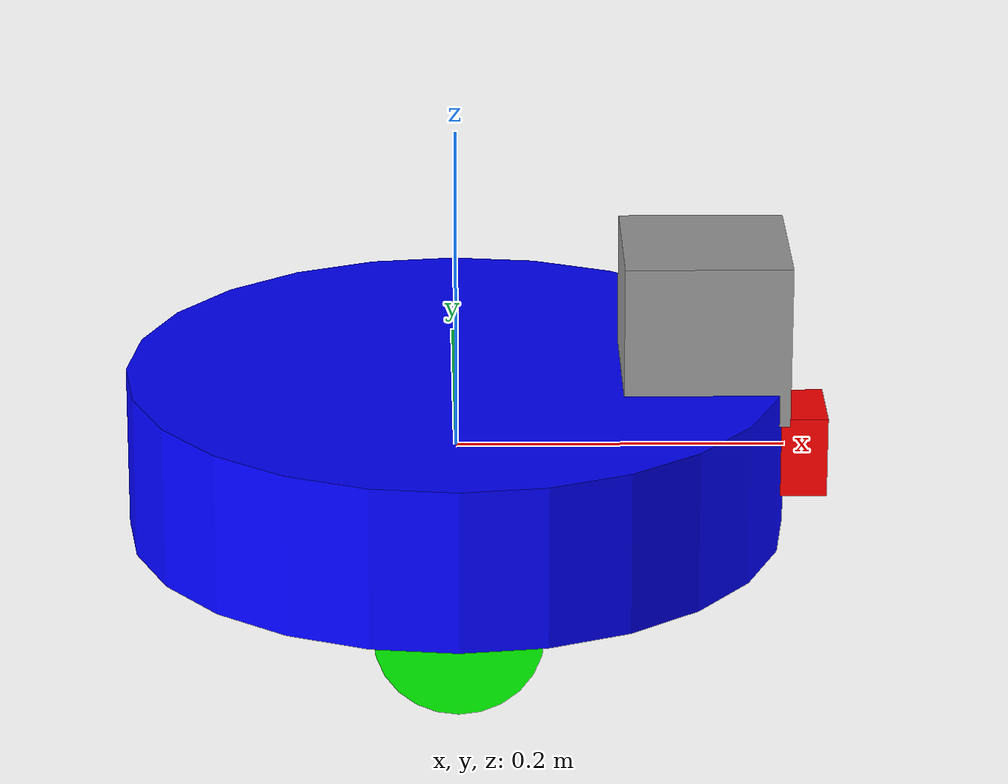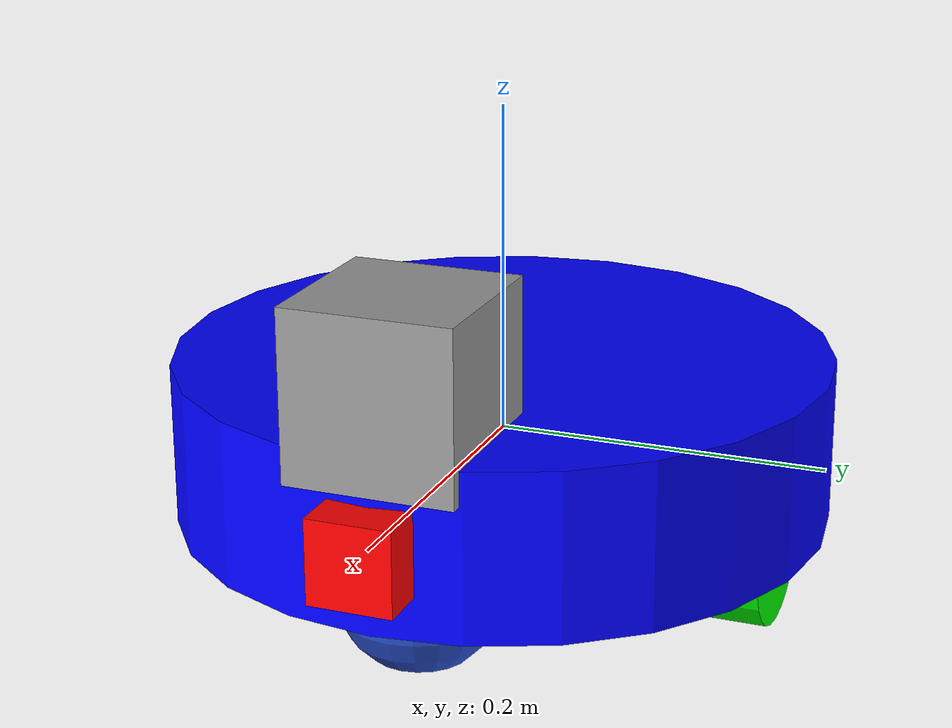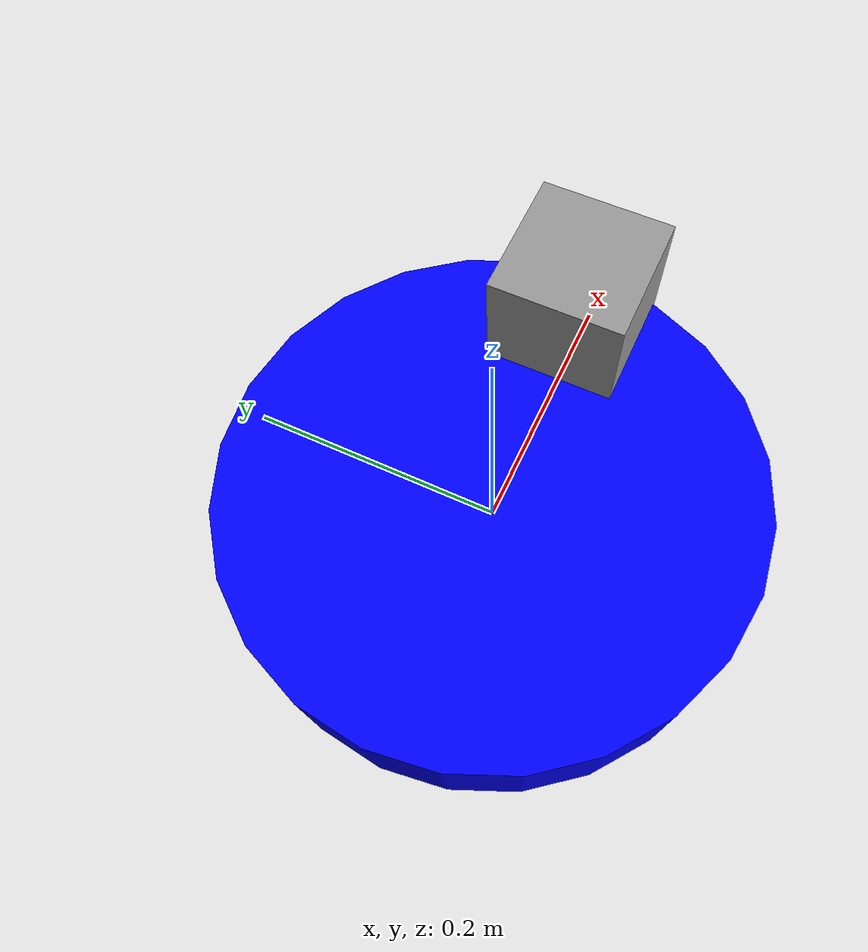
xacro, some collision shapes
<robot name="my_robot" xmlns:xacro="http://www.ros.org/wiki/xacro">

  <xacro:include filename="$(find my_robot)/urdf/my_robot.gazebo" />
  <link name="robot_footprint"></link>

  <joint name="robot_footprint_joint" type="fixed">
    <origin xyz="0 0 0" rpy="0 0 0" />
    <parent link="robot_footprint"/>
    <child link="chassis" />
  </joint>

  <link name='chassis'>
    <pose>0 0 0.1 0 0 0</pose>

    <inertial>
      <mass value="15.0"/>
      <origin xyz="0.0 0 0" rpy=" 0 0 0"/>
      <inertia
          ixx="0.1" ixy="0" ixz="0"
          iyy="0.1" iyz="0"
          izz="0.1"
      />
    </inertial>

    <collision name='collision'>
      <origin xyz="0 0 0" rpy=" 0 0 0"/>
      <geometry>
        <cylinder radius="0.2" length="0.1"/>
      </geometry>
    </collision>

    <visual name='chassis_visual'>
      <origin xyz="0 0 0" rpy=" 0 0 0"/>
      <geometry>
        <cylinder radius="0.2" length="0.1"/>
      </geometry>
      <material name="blue">
  	<color rgba="0 0 255 1"/>
      </material>
    </visual>

    <!-- caster back -->
    <collision name='back_caster_collision'>
      <origin xyz="-0.13 0 -0.05" rpy=" 0 0 0"/>
      <geometry>
        <sphere radius="0.05"/>
      </geometry>
    </collision>

    <visual name='back_caster_visual'>
      <origin xyz="-0.13 0 -0.05" rpy=" 0 0 0"/>
      <geometry>
        <sphere radius="0.05"/>
      </geometry>
    </visual>

    <!-- caster front -->
    <collision name='front_caster_collision'>
      <origin xyz="0.13 0 -0.05" rpy=" 0 0 0"/>
      <geometry>
        <sphere radius="0.05"/>
      </geometry>
    </collision>

    <visual name='front_caster_visual'>
      <origin xyz="0.13 0 -0.05" rpy=" 0 0 0"/>
      <geometry>
        <sphere radius="0.05"/>
      </geometry>
    </visual>
  </link>

  <!-- Left wheel -->
  <link name="left_wheel">
    <!-- Collision -->
    <collision>
      <origin xyz="0 0 0" rpy="0 1.5707 1.5707"/>
      <geometry>
        <cylinder radius="0.05" length="0.05"/>
      </geometry>
    </collision>

    <!-- Inertial -->
    <inertial>
      <mass value="5"/>
      <origin xyz="0 0 0" rpy="0 1.5707 1.5707"/>
      <inertia ixx="0.1" ixy="0" ixz="0" iyy="0.1" iyz="0" izz="0.1"/>
    </inertial>

    <!-- Visual -->
    <visual>
      <origin xyz="0 0 0" rpy="0 1.5707 1.5707"/>
      <geometry>
        <cylinder radius="0.05" length="0.05"/>
      </geometry>
      <material name="green">
        <color rgba="0.0 1.0 0.0 1.0"/>
      </material>
    </visual>
  </link>

<!-- Right wheel -->
<link name="right_wheel">
  <!-- Collision -->
  <collision>
    <origin xyz="0 0 0" rpy="0 1.5707 1.5707"/>
    <geometry>
      <cylinder radius="0.05" length="0.05"/>
    </geometry>
  </collision>

  <!-- Inertial -->
  <inertial>
    <mass value="5"/>
    <origin xyz="0 0 0" rpy="0 1.5707 1.5707"/>
    <inertia ixx="0.1" ixy="0" ixz="0" iyy="0.1" iyz="0" izz="0.1"/>
  </inertial>

  <!-- Visual -->
  <visual>
    <origin xyz="0 0 0" rpy="0 1.5707 1.5707"/>
    <geometry>
      <cylinder radius="0.05" length="0.05"/>
    </geometry>
    <material name="green">
      <color rgba="0.0 1.0 0.0 1.0"/>
    </material>
  </visual>
</link>

  <joint type="continuous" name="left_wheel_hinge">
    <origin xyz="0 0.15 -0.05" rpy="0 0 0"/>
    <child link="left_wheel"/>
    <parent link="chassis"/>
    <axis xyz="0 1 0" rpy="0 0 0"/>
    <limit effort="10000" velocity="1000"/>
    <dynamics damping="1.0" friction="1.0"/>
  </joint>

  <joint type="continuous" name="right_wheel_hinge">
    <origin xyz="0 -0.15 -0.05" rpy="0 0 0"/>
    <child link="right_wheel"/>
    <parent link="chassis"/>
    <axis xyz="0 1 0" rpy="0 0 0"/>
    <limit effort="10000" velocity="1000"/>
    <dynamics damping="1.0" friction="1.0"/>
  </joint>

 <!-- Camera -->
  <link name="camera">
    <!-- Collision -->
    <collision>
      <origin xyz="0 0 0" rpy="0 0 0"/>
      <geometry>
        <box size="0.05 0.05 0.05"/>
      </geometry>
    </collision>

    <!-- Inertial -->
    <inertial>
      <mass value="0.1"/>
      <origin xyz="0 0 0" rpy="0 0 0"/>
      <inertia ixx="1e-6" ixy="0" ixz="0" iyy="1e-6" iyz="0" izz="1e-6"/>
      <box_inertia m="0.1" x="0.05" y="0.05" z="0.05"/>
    </inertial>

    <!-- Visual -->
    <visual>
      <origin xyz="0 0 0" rpy="0 0 0"/>
      <geometry>
        <box size="0.05 0.05 0.05"/>
      </geometry>
      <material name="red">
     	 <color rgba="1.0 0.0 0.0 1.0"/>
      </material>
    </visual>
  </link>

    <joint type="fixed" name="camera_joint">
    <axis xyz="0 1 0" rpy="0 0 0"/>
    <origin xyz="0.2 0 0" rpy="0 0 0"/>
    <child link="camera"/>
    <parent link="chassis"/>
  </joint>

  <!-- Lidar -->
  <link name="hokuyo">
    <!-- Collision -->
    <collision>
      <origin xyz="0 0 0" rpy="0 0 0"/>
      <geometry>
        <box size="0.1 0.1 0.1"/>
      </geometry>
    </collision>

    <!-- Inertial -->
    <inertial>
      <mass value="1e-5"/>
      <origin xyz="0 0 0" rpy="0 0 0"/>
      <inertia ixx="1e-6" ixy="0" ixz="0" iyy="1e-6" iyz="0" izz="1e-6" />
    </inertial>

    <!-- Visual -->
    <visual>
      <origin xyz="0 0 0" rpy="0 0 0"/>
	<geometry>
        	<mesh filename="package://my_robot/meshes/hokuyo.dae"/>
	</geometry>
      <material name="grey"/>
    </visual>
  </link>

    <joint type="fixed" name="hokuyo_joint">
    <axis xyz="0 1 0" rpy="0 0 0"/>
    <origin xyz="0.15 0 .08" rpy="0 0 0"/>
    <child link="hokuyo"/>
    <parent link="chassis"/>
  </joint>

<!-- Color the components -->
  <gazebo reference="chassis">
    <material>Gazebo/Blue</material>
  </gazebo>

  <gazebo reference="left_wheel">
    <material>Gazebo/Green</material>
  </gazebo>

  <gazebo reference="right_wheel">
    <material>Gazebo/Green</material>
  </gazebo>

  <gazebo reference="camera">
    <material>Gazebo/Red</material>
  </gazebo>

</robot>
